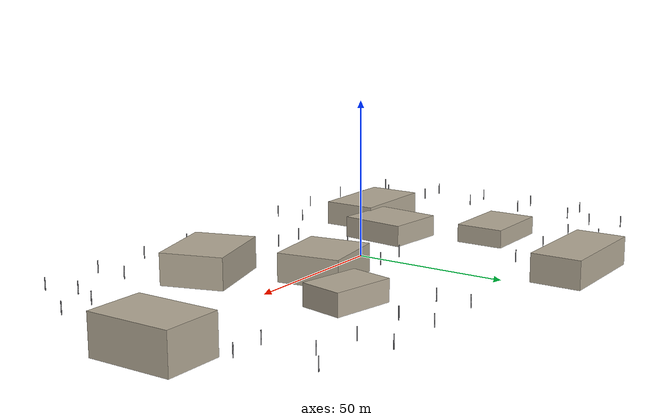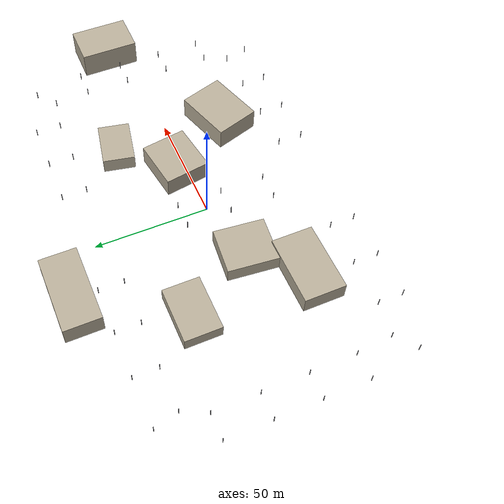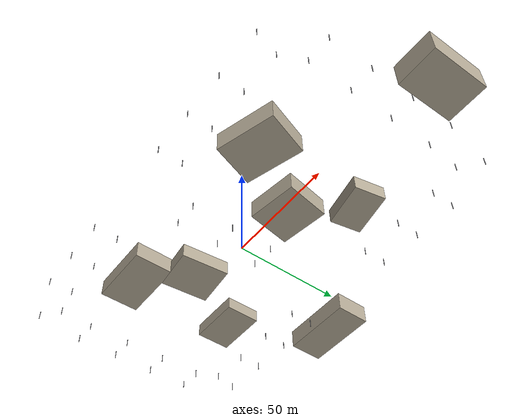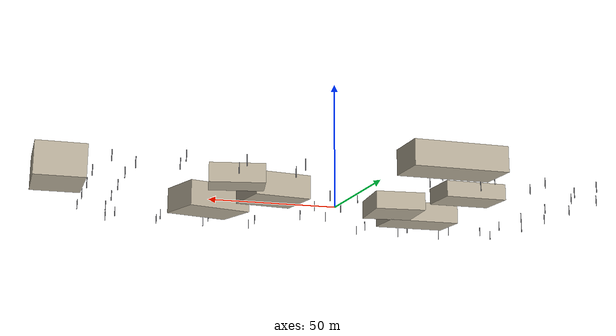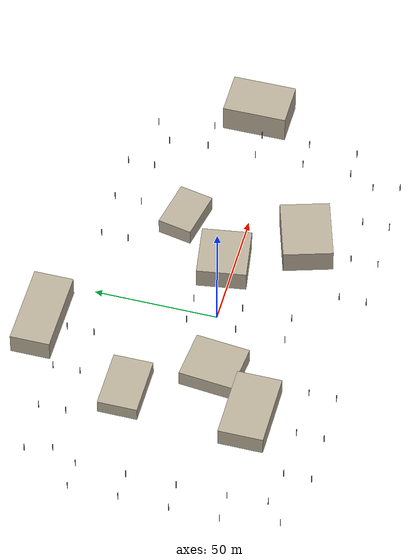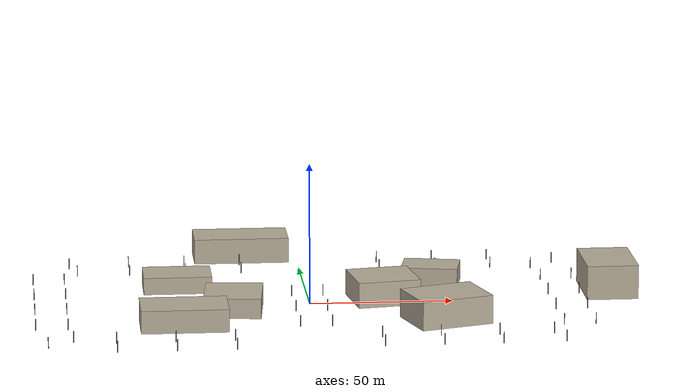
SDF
<?xml version="1.0" ?>
<sdf version="1.9">
  <model name="campus_structures">
    <static>true</static>
    <link name="link">
      <visual name="pole_loop_east_0l_visual">
        <pose>21.000000 -44.500000 2.000000 0 0 0</pose>
        <geometry><cylinder><radius>0.150000</radius><length>4.000000</length></cylinder></geometry>
        <material><ambient>0.45 0.45 0.47 1</ambient><diffuse>0.55 0.55 0.57 1</diffuse></material>
      </visual>
      <collision name="pole_loop_east_0l_collision">
        <pose>21.000000 -44.500000 2.000000 0 0 0</pose>
        <geometry><cylinder><radius>0.150000</radius><length>4.000000</length></cylinder></geometry>
      </collision>
      <visual name="pole_loop_east_0r_visual">
        <pose>21.000000 -55.500000 2.000000 0 0 0</pose>
        <geometry><cylinder><radius>0.150000</radius><length>4.000000</length></cylinder></geometry>
        <material><ambient>0.45 0.45 0.47 1</ambient><diffuse>0.55 0.55 0.57 1</diffuse></material>
      </visual>
      <collision name="pole_loop_east_0r_collision">
        <pose>21.000000 -55.500000 2.000000 0 0 0</pose>
        <geometry><cylinder><radius>0.150000</radius><length>4.000000</length></cylinder></geometry>
      </collision>
      <visual name="pole_loop_east_1l_visual">
        <pose>41.000000 -44.500000 2.000000 0 0 0</pose>
        <geometry><cylinder><radius>0.150000</radius><length>4.000000</length></cylinder></geometry>
        <material><ambient>0.45 0.45 0.47 1</ambient><diffuse>0.55 0.55 0.57 1</diffuse></material>
      </visual>
      <collision name="pole_loop_east_1l_collision">
        <pose>41.000000 -44.500000 2.000000 0 0 0</pose>
        <geometry><cylinder><radius>0.150000</radius><length>4.000000</length></cylinder></geometry>
      </collision>
      <visual name="pole_loop_east_1r_visual">
        <pose>41.000000 -55.500000 2.000000 0 0 0</pose>
        <geometry><cylinder><radius>0.150000</radius><length>4.000000</length></cylinder></geometry>
        <material><ambient>0.45 0.45 0.47 1</ambient><diffuse>0.55 0.55 0.57 1</diffuse></material>
      </visual>
      <collision name="pole_loop_east_1r_collision">
        <pose>41.000000 -55.500000 2.000000 0 0 0</pose>
        <geometry><cylinder><radius>0.150000</radius><length>4.000000</length></cylinder></geometry>
      </collision>
      <visual name="pole_loop_east_2l_visual">
        <pose>61.000000 -44.500000 2.000000 0 0 0</pose>
        <geometry><cylinder><radius>0.150000</radius><length>4.000000</length></cylinder></geometry>
        <material><ambient>0.45 0.45 0.47 1</ambient><diffuse>0.55 0.55 0.57 1</diffuse></material>
      </visual>
      <collision name="pole_loop_east_2l_collision">
        <pose>61.000000 -44.500000 2.000000 0 0 0</pose>
        <geometry><cylinder><radius>0.150000</radius><length>4.000000</length></cylinder></geometry>
      </collision>
      <visual name="pole_loop_east_2r_visual">
        <pose>61.000000 -55.500000 2.000000 0 0 0</pose>
        <geometry><cylinder><radius>0.150000</radius><length>4.000000</length></cylinder></geometry>
        <material><ambient>0.45 0.45 0.47 1</ambient><diffuse>0.55 0.55 0.57 1</diffuse></material>
      </visual>
      <collision name="pole_loop_east_2r_collision">
        <pose>61.000000 -55.500000 2.000000 0 0 0</pose>
        <geometry><cylinder><radius>0.150000</radius><length>4.000000</length></cylinder></geometry>
      </collision>
      <visual name="pole_loop_east_3l_visual">
        <pose>79.608126 -44.297931 2.000000 0 0 0</pose>
        <geometry><cylinder><radius>0.150000</radius><length>4.000000</length></cylinder></geometry>
        <material><ambient>0.45 0.45 0.47 1</ambient><diffuse>0.55 0.55 0.57 1</diffuse></material>
      </visual>
      <collision name="pole_loop_east_3l_collision">
        <pose>79.608126 -44.297931 2.000000 0 0 0</pose>
        <geometry><cylinder><radius>0.150000</radius><length>4.000000</length></cylinder></geometry>
      </collision>
      <visual name="pole_loop_east_3r_visual">
        <pose>82.329569 -54.955967 2.000000 0 0 0</pose>
        <geometry><cylinder><radius>0.150000</radius><length>4.000000</length></cylinder></geometry>
        <material><ambient>0.45 0.45 0.47 1</ambient><diffuse>0.55 0.55 0.57 1</diffuse></material>
      </visual>
      <collision name="pole_loop_east_3r_collision">
        <pose>82.329569 -54.955967 2.000000 0 0 0</pose>
        <geometry><cylinder><radius>0.150000</radius><length>4.000000</length></cylinder></geometry>
      </collision>
      <visual name="pole_loop_east_4l_visual">
        <pose>84.500000 -33.849556 2.000000 0 0 0</pose>
        <geometry><cylinder><radius>0.150000</radius><length>4.000000</length></cylinder></geometry>
        <material><ambient>0.45 0.45 0.47 1</ambient><diffuse>0.55 0.55 0.57 1</diffuse></material>
      </visual>
      <collision name="pole_loop_east_4l_collision">
        <pose>84.500000 -33.849556 2.000000 0 0 0</pose>
        <geometry><cylinder><radius>0.150000</radius><length>4.000000</length></cylinder></geometry>
      </collision>
      <visual name="pole_loop_east_4r_visual">
        <pose>95.500000 -33.849556 2.000000 0 0 0</pose>
        <geometry><cylinder><radius>0.150000</radius><length>4.000000</length></cylinder></geometry>
        <material><ambient>0.45 0.45 0.47 1</ambient><diffuse>0.55 0.55 0.57 1</diffuse></material>
      </visual>
      <collision name="pole_loop_east_4r_collision">
        <pose>95.500000 -33.849556 2.000000 0 0 0</pose>
        <geometry><cylinder><radius>0.150000</radius><length>4.000000</length></cylinder></geometry>
      </collision>
      <visual name="pole_loop_east_5l_visual">
        <pose>84.500000 -13.849556 2.000000 0 0 0</pose>
        <geometry><cylinder><radius>0.150000</radius><length>4.000000</length></cylinder></geometry>
        <material><ambient>0.45 0.45 0.47 1</ambient><diffuse>0.55 0.55 0.57 1</diffuse></material>
      </visual>
      <collision name="pole_loop_east_5l_collision">
        <pose>84.500000 -13.849556 2.000000 0 0 0</pose>
        <geometry><cylinder><radius>0.150000</radius><length>4.000000</length></cylinder></geometry>
      </collision>
      <visual name="pole_loop_east_5r_visual">
        <pose>95.500000 -13.849556 2.000000 0 0 0</pose>
        <geometry><cylinder><radius>0.150000</radius><length>4.000000</length></cylinder></geometry>
        <material><ambient>0.45 0.45 0.47 1</ambient><diffuse>0.55 0.55 0.57 1</diffuse></material>
      </visual>
      <collision name="pole_loop_east_5r_collision">
        <pose>95.500000 -13.849556 2.000000 0 0 0</pose>
        <geometry><cylinder><radius>0.150000</radius><length>4.000000</length></cylinder></geometry>
      </collision>
      <visual name="pole_loop_east_6l_visual">
        <pose>84.500000 6.150444 2.000000 0 0 0</pose>
        <geometry><cylinder><radius>0.150000</radius><length>4.000000</length></cylinder></geometry>
        <material><ambient>0.45 0.45 0.47 1</ambient><diffuse>0.55 0.55 0.57 1</diffuse></material>
      </visual>
      <collision name="pole_loop_east_6l_collision">
        <pose>84.500000 6.150444 2.000000 0 0 0</pose>
        <geometry><cylinder><radius>0.150000</radius><length>4.000000</length></cylinder></geometry>
      </collision>
      <visual name="pole_loop_east_6r_visual">
        <pose>95.500000 6.150444 2.000000 0 0 0</pose>
        <geometry><cylinder><radius>0.150000</radius><length>4.000000</length></cylinder></geometry>
        <material><ambient>0.45 0.45 0.47 1</ambient><diffuse>0.55 0.55 0.57 1</diffuse></material>
      </visual>
      <collision name="pole_loop_east_6r_collision">
        <pose>95.500000 6.150444 2.000000 0 0 0</pose>
        <geometry><cylinder><radius>0.150000</radius><length>4.000000</length></cylinder></geometry>
      </collision>
      <visual name="pole_loop_east_7l_visual">
        <pose>84.500000 26.150444 2.000000 0 0 0</pose>
        <geometry><cylinder><radius>0.150000</radius><length>4.000000</length></cylinder></geometry>
        <material><ambient>0.45 0.45 0.47 1</ambient><diffuse>0.55 0.55 0.57 1</diffuse></material>
      </visual>
      <collision name="pole_loop_east_7l_collision">
        <pose>84.500000 26.150444 2.000000 0 0 0</pose>
        <geometry><cylinder><radius>0.150000</radius><length>4.000000</length></cylinder></geometry>
      </collision>
      <visual name="pole_loop_east_7r_visual">
        <pose>95.500000 26.150444 2.000000 0 0 0</pose>
        <geometry><cylinder><radius>0.150000</radius><length>4.000000</length></cylinder></geometry>
        <material><ambient>0.45 0.45 0.47 1</ambient><diffuse>0.55 0.55 0.57 1</diffuse></material>
      </visual>
      <collision name="pole_loop_east_7r_collision">
        <pose>95.500000 26.150444 2.000000 0 0 0</pose>
        <geometry><cylinder><radius>0.150000</radius><length>4.000000</length></cylinder></geometry>
      </collision>
      <visual name="pole_loop_east_8l_visual">
        <pose>83.057476 42.083129 2.000000 0 0 0</pose>
        <geometry><cylinder><radius>0.150000</radius><length>4.000000</length></cylinder></geometry>
        <material><ambient>0.45 0.45 0.47 1</ambient><diffuse>0.55 0.55 0.57 1</diffuse></material>
      </visual>
      <collision name="pole_loop_east_8l_collision">
        <pose>83.057476 42.083129 2.000000 0 0 0</pose>
        <geometry><cylinder><radius>0.150000</radius><length>4.000000</length></cylinder></geometry>
      </collision>
      <visual name="pole_loop_east_8r_visual">
        <pose>91.616281 48.993038 2.000000 0 0 0</pose>
        <geometry><cylinder><radius>0.150000</radius><length>4.000000</length></cylinder></geometry>
        <material><ambient>0.45 0.45 0.47 1</ambient><diffuse>0.55 0.55 0.57 1</diffuse></material>
      </visual>
      <collision name="pole_loop_east_8r_collision">
        <pose>91.616281 48.993038 2.000000 0 0 0</pose>
        <geometry><cylinder><radius>0.150000</radius><length>4.000000</length></cylinder></geometry>
      </collision>
      <visual name="pole_loop_east_9l_visual">
        <pose>68.699112 44.500000 2.000000 0 0 0</pose>
        <geometry><cylinder><radius>0.150000</radius><length>4.000000</length></cylinder></geometry>
        <material><ambient>0.45 0.45 0.47 1</ambient><diffuse>0.55 0.55 0.57 1</diffuse></material>
      </visual>
      <collision name="pole_loop_east_9l_collision">
        <pose>68.699112 44.500000 2.000000 0 0 0</pose>
        <geometry><cylinder><radius>0.150000</radius><length>4.000000</length></cylinder></geometry>
      </collision>
      <visual name="pole_loop_east_9r_visual">
        <pose>68.699112 55.500000 2.000000 0 0 0</pose>
        <geometry><cylinder><radius>0.150000</radius><length>4.000000</length></cylinder></geometry>
        <material><ambient>0.45 0.45 0.47 1</ambient><diffuse>0.55 0.55 0.57 1</diffuse></material>
      </visual>
      <collision name="pole_loop_east_9r_collision">
        <pose>68.699112 55.500000 2.000000 0 0 0</pose>
        <geometry><cylinder><radius>0.150000</radius><length>4.000000</length></cylinder></geometry>
      </collision>
      <visual name="pole_loop_east_10l_visual">
        <pose>48.699112 44.500000 2.000000 0 0 0</pose>
        <geometry><cylinder><radius>0.150000</radius><length>4.000000</length></cylinder></geometry>
        <material><ambient>0.45 0.45 0.47 1</ambient><diffuse>0.55 0.55 0.57 1</diffuse></material>
      </visual>
      <collision name="pole_loop_east_10l_collision">
        <pose>48.699112 44.500000 2.000000 0 0 0</pose>
        <geometry><cylinder><radius>0.150000</radius><length>4.000000</length></cylinder></geometry>
      </collision>
      <visual name="pole_loop_east_10r_visual">
        <pose>48.699112 55.500000 2.000000 0 0 0</pose>
        <geometry><cylinder><radius>0.150000</radius><length>4.000000</length></cylinder></geometry>
        <material><ambient>0.45 0.45 0.47 1</ambient><diffuse>0.55 0.55 0.57 1</diffuse></material>
      </visual>
      <collision name="pole_loop_east_10r_collision">
        <pose>48.699112 55.500000 2.000000 0 0 0</pose>
        <geometry><cylinder><radius>0.150000</radius><length>4.000000</length></cylinder></geometry>
      </collision>
      <visual name="pole_loop_east_11l_visual">
        <pose>28.699112 44.500000 2.000000 0 0 0</pose>
        <geometry><cylinder><radius>0.150000</radius><length>4.000000</length></cylinder></geometry>
        <material><ambient>0.45 0.45 0.47 1</ambient><diffuse>0.55 0.55 0.57 1</diffuse></material>
      </visual>
      <collision name="pole_loop_east_11l_collision">
        <pose>28.699112 44.500000 2.000000 0 0 0</pose>
        <geometry><cylinder><radius>0.150000</radius><length>4.000000</length></cylinder></geometry>
      </collision>
      <visual name="pole_loop_east_11r_visual">
        <pose>28.699112 55.500000 2.000000 0 0 0</pose>
        <geometry><cylinder><radius>0.150000</radius><length>4.000000</length></cylinder></geometry>
        <material><ambient>0.45 0.45 0.47 1</ambient><diffuse>0.55 0.55 0.57 1</diffuse></material>
      </visual>
      <collision name="pole_loop_east_11r_collision">
        <pose>28.699112 55.500000 2.000000 0 0 0</pose>
        <geometry><cylinder><radius>0.150000</radius><length>4.000000</length></cylinder></geometry>
      </collision>
      <visual name="pole_loop_west_0l_visual">
        <pose>-21.000000 44.500000 2.000000 0 0 0</pose>
        <geometry><cylinder><radius>0.150000</radius><length>4.000000</length></cylinder></geometry>
        <material><ambient>0.45 0.45 0.47 1</ambient><diffuse>0.55 0.55 0.57 1</diffuse></material>
      </visual>
      <collision name="pole_loop_west_0l_collision">
        <pose>-21.000000 44.500000 2.000000 0 0 0</pose>
        <geometry><cylinder><radius>0.150000</radius><length>4.000000</length></cylinder></geometry>
      </collision>
      <visual name="pole_loop_west_0r_visual">
        <pose>-21.000000 55.500000 2.000000 0 0 0</pose>
        <geometry><cylinder><radius>0.150000</radius><length>4.000000</length></cylinder></geometry>
        <material><ambient>0.45 0.45 0.47 1</ambient><diffuse>0.55 0.55 0.57 1</diffuse></material>
      </visual>
      <collision name="pole_loop_west_0r_collision">
        <pose>-21.000000 55.500000 2.000000 0 0 0</pose>
        <geometry><cylinder><radius>0.150000</radius><length>4.000000</length></cylinder></geometry>
      </collision>
      <visual name="pole_loop_west_1l_visual">
        <pose>-41.000000 44.500000 2.000000 0 0 0</pose>
        <geometry><cylinder><radius>0.150000</radius><length>4.000000</length></cylinder></geometry>
        <material><ambient>0.45 0.45 0.47 1</ambient><diffuse>0.55 0.55 0.57 1</diffuse></material>
      </visual>
      <collision name="pole_loop_west_1l_collision">
        <pose>-41.000000 44.500000 2.000000 0 0 0</pose>
        <geometry><cylinder><radius>0.150000</radius><length>4.000000</length></cylinder></geometry>
      </collision>
      <visual name="pole_loop_west_1r_visual">
        <pose>-41.000000 55.500000 2.000000 0 0 0</pose>
        <geometry><cylinder><radius>0.150000</radius><length>4.000000</length></cylinder></geometry>
        <material><ambient>0.45 0.45 0.47 1</ambient><diffuse>0.55 0.55 0.57 1</diffuse></material>
      </visual>
      <collision name="pole_loop_west_1r_collision">
        <pose>-41.000000 55.500000 2.000000 0 0 0</pose>
        <geometry><cylinder><radius>0.150000</radius><length>4.000000</length></cylinder></geometry>
      </collision>
      <visual name="pole_loop_west_2l_visual">
        <pose>-61.000000 44.500000 2.000000 0 0 0</pose>
        <geometry><cylinder><radius>0.150000</radius><length>4.000000</length></cylinder></geometry>
        <material><ambient>0.45 0.45 0.47 1</ambient><diffuse>0.55 0.55 0.57 1</diffuse></material>
      </visual>
      <collision name="pole_loop_west_2l_collision">
        <pose>-61.000000 44.500000 2.000000 0 0 0</pose>
        <geometry><cylinder><radius>0.150000</radius><length>4.000000</length></cylinder></geometry>
      </collision>
      <visual name="pole_loop_west_2r_visual">
        <pose>-61.000000 55.500000 2.000000 0 0 0</pose>
        <geometry><cylinder><radius>0.150000</radius><length>4.000000</length></cylinder></geometry>
        <material><ambient>0.45 0.45 0.47 1</ambient><diffuse>0.55 0.55 0.57 1</diffuse></material>
      </visual>
      <collision name="pole_loop_west_2r_collision">
        <pose>-61.000000 55.500000 2.000000 0 0 0</pose>
        <geometry><cylinder><radius>0.150000</radius><length>4.000000</length></cylinder></geometry>
      </collision>
      <visual name="pole_loop_west_3l_visual">
        <pose>-79.608126 44.297931 2.000000 0 0 0</pose>
        <geometry><cylinder><radius>0.150000</radius><length>4.000000</length></cylinder></geometry>
        <material><ambient>0.45 0.45 0.47 1</ambient><diffuse>0.55 0.55 0.57 1</diffuse></material>
      </visual>
      <collision name="pole_loop_west_3l_collision">
        <pose>-79.608126 44.297931 2.000000 0 0 0</pose>
        <geometry><cylinder><radius>0.150000</radius><length>4.000000</length></cylinder></geometry>
      </collision>
      <visual name="pole_loop_west_3r_visual">
        <pose>-82.329569 54.955967 2.000000 0 0 0</pose>
        <geometry><cylinder><radius>0.150000</radius><length>4.000000</length></cylinder></geometry>
        <material><ambient>0.45 0.45 0.47 1</ambient><diffuse>0.55 0.55 0.57 1</diffuse></material>
      </visual>
      <collision name="pole_loop_west_3r_collision">
        <pose>-82.329569 54.955967 2.000000 0 0 0</pose>
        <geometry><cylinder><radius>0.150000</radius><length>4.000000</length></cylinder></geometry>
      </collision>
      <visual name="pole_loop_west_4l_visual">
        <pose>-84.500000 33.849556 2.000000 0 0 0</pose>
        <geometry><cylinder><radius>0.150000</radius><length>4.000000</length></cylinder></geometry>
        <material><ambient>0.45 0.45 0.47 1</ambient><diffuse>0.55 0.55 0.57 1</diffuse></material>
      </visual>
      <collision name="pole_loop_west_4l_collision">
        <pose>-84.500000 33.849556 2.000000 0 0 0</pose>
        <geometry><cylinder><radius>0.150000</radius><length>4.000000</length></cylinder></geometry>
      </collision>
      <visual name="pole_loop_west_4r_visual">
        <pose>-95.500000 33.849556 2.000000 0 0 0</pose>
        <geometry><cylinder><radius>0.150000</radius><length>4.000000</length></cylinder></geometry>
        <material><ambient>0.45 0.45 0.47 1</ambient><diffuse>0.55 0.55 0.57 1</diffuse></material>
      </visual>
      <collision name="pole_loop_west_4r_collision">
        <pose>-95.500000 33.849556 2.000000 0 0 0</pose>
        <geometry><cylinder><radius>0.150000</radius><length>4.000000</length></cylinder></geometry>
      </collision>
      <visual name="pole_loop_west_5l_visual">
        <pose>-84.500000 13.849556 2.000000 0 0 0</pose>
        <geometry><cylinder><radius>0.150000</radius><length>4.000000</length></cylinder></geometry>
        <material><ambient>0.45 0.45 0.47 1</ambient><diffuse>0.55 0.55 0.57 1</diffuse></material>
      </visual>
      <collision name="pole_loop_west_5l_collision">
        <pose>-84.500000 13.849556 2.000000 0 0 0</pose>
        <geometry><cylinder><radius>0.150000</radius><length>4.000000</length></cylinder></geometry>
      </collision>
      <visual name="pole_loop_west_5r_visual">
        <pose>-95.500000 13.849556 2.000000 0 0 0</pose>
        <geometry><cylinder><radius>0.150000</radius><length>4.000000</length></cylinder></geometry>
        <material><ambient>0.45 0.45 0.47 1</ambient><diffuse>0.55 0.55 0.57 1</diffuse></material>
      </visual>
      <collision name="pole_loop_west_5r_collision">
        <pose>-95.500000 13.849556 2.000000 0 0 0</pose>
        <geometry><cylinder><radius>0.150000</radius><length>4.000000</length></cylinder></geometry>
      </collision>
      <visual name="pole_loop_west_6l_visual">
        <pose>-84.500000 -6.150444 2.000000 0 0 0</pose>
        <geometry><cylinder><radius>0.150000</radius><length>4.000000</length></cylinder></geometry>
        <material><ambient>0.45 0.45 0.47 1</ambient><diffuse>0.55 0.55 0.57 1</diffuse></material>
      </visual>
      <collision name="pole_loop_west_6l_collision">
        <pose>-84.500000 -6.150444 2.000000 0 0 0</pose>
        <geometry><cylinder><radius>0.150000</radius><length>4.000000</length></cylinder></geometry>
      </collision>
      <visual name="pole_loop_west_6r_visual">
        <pose>-95.500000 -6.150444 2.000000 0 0 0</pose>
        <geometry><cylinder><radius>0.150000</radius><length>4.000000</length></cylinder></geometry>
        <material><ambient>0.45 0.45 0.47 1</ambient><diffuse>0.55 0.55 0.57 1</diffuse></material>
      </visual>
      <collision name="pole_loop_west_6r_collision">
        <pose>-95.500000 -6.150444 2.000000 0 0 0</pose>
        <geometry><cylinder><radius>0.150000</radius><length>4.000000</length></cylinder></geometry>
      </collision>
      <visual name="pole_loop_west_7l_visual">
        <pose>-84.500000 -26.150444 2.000000 0 0 0</pose>
        <geometry><cylinder><radius>0.150000</radius><length>4.000000</length></cylinder></geometry>
        <material><ambient>0.45 0.45 0.47 1</ambient><diffuse>0.55 0.55 0.57 1</diffuse></material>
      </visual>
      <collision name="pole_loop_west_7l_collision">
        <pose>-84.500000 -26.150444 2.000000 0 0 0</pose>
        <geometry><cylinder><radius>0.150000</radius><length>4.000000</length></cylinder></geometry>
      </collision>
      <visual name="pole_loop_west_7r_visual">
        <pose>-95.500000 -26.150444 2.000000 0 0 0</pose>
        <geometry><cylinder><radius>0.150000</radius><length>4.000000</length></cylinder></geometry>
        <material><ambient>0.45 0.45 0.47 1</ambient><diffuse>0.55 0.55 0.57 1</diffuse></material>
      </visual>
      <collision name="pole_loop_west_7r_collision">
        <pose>-95.500000 -26.150444 2.000000 0 0 0</pose>
        <geometry><cylinder><radius>0.150000</radius><length>4.000000</length></cylinder></geometry>
      </collision>
      <visual name="pole_loop_west_8l_visual">
        <pose>-83.057476 -42.083129 2.000000 0 0 0</pose>
        <geometry><cylinder><radius>0.150000</radius><length>4.000000</length></cylinder></geometry>
        <material><ambient>0.45 0.45 0.47 1</ambient><diffuse>0.55 0.55 0.57 1</diffuse></material>
      </visual>
      <collision name="pole_loop_west_8l_collision">
        <pose>-83.057476 -42.083129 2.000000 0 0 0</pose>
        <geometry><cylinder><radius>0.150000</radius><length>4.000000</length></cylinder></geometry>
      </collision>
      <visual name="pole_loop_west_8r_visual">
        <pose>-91.616281 -48.993038 2.000000 0 0 0</pose>
        <geometry><cylinder><radius>0.150000</radius><length>4.000000</length></cylinder></geometry>
        <material><ambient>0.45 0.45 0.47 1</ambient><diffuse>0.55 0.55 0.57 1</diffuse></material>
      </visual>
      <collision name="pole_loop_west_8r_collision">
        <pose>-91.616281 -48.993038 2.000000 0 0 0</pose>
        <geometry><cylinder><radius>0.150000</radius><length>4.000000</length></cylinder></geometry>
      </collision>
      <visual name="pole_loop_west_9l_visual">
        <pose>-68.699112 -44.500000 2.000000 0 0 0</pose>
        <geometry><cylinder><radius>0.150000</radius><length>4.000000</length></cylinder></geometry>
        <material><ambient>0.45 0.45 0.47 1</ambient><diffuse>0.55 0.55 0.57 1</diffuse></material>
      </visual>
      <collision name="pole_loop_west_9l_collision">
        <pose>-68.699112 -44.500000 2.000000 0 0 0</pose>
        <geometry><cylinder><radius>0.150000</radius><length>4.000000</length></cylinder></geometry>
      </collision>
      <visual name="pole_loop_west_9r_visual">
        <pose>-68.699112 -55.500000 2.000000 0 0 0</pose>
        <geometry><cylinder><radius>0.150000</radius><length>4.000000</length></cylinder></geometry>
        <material><ambient>0.45 0.45 0.47 1</ambient><diffuse>0.55 0.55 0.57 1</diffuse></material>
      </visual>
      <collision name="pole_loop_west_9r_collision">
        <pose>-68.699112 -55.500000 2.000000 0 0 0</pose>
        <geometry><cylinder><radius>0.150000</radius><length>4.000000</length></cylinder></geometry>
      </collision>
      <visual name="pole_loop_west_10l_visual">
        <pose>-48.699112 -44.500000 2.000000 0 0 0</pose>
        <geometry><cylinder><radius>0.150000</radius><length>4.000000</length></cylinder></geometry>
        <material><ambient>0.45 0.45 0.47 1</ambient><diffuse>0.55 0.55 0.57 1</diffuse></material>
      </visual>
      <collision name="pole_loop_west_10l_collision">
        <pose>-48.699112 -44.500000 2.000000 0 0 0</pose>
        <geometry><cylinder><radius>0.150000</radius><length>4.000000</length></cylinder></geometry>
      </collision>
      <visual name="pole_loop_west_10r_visual">
        <pose>-48.699112 -55.500000 2.000000 0 0 0</pose>
        <geometry><cylinder><radius>0.150000</radius><length>4.000000</length></cylinder></geometry>
        <material><ambient>0.45 0.45 0.47 1</ambient><diffuse>0.55 0.55 0.57 1</diffuse></material>
      </visual>
      <collision name="pole_loop_west_10r_collision">
        <pose>-48.699112 -55.500000 2.000000 0 0 0</pose>
        <geometry><cylinder><radius>0.150000</radius><length>4.000000</length></cylinder></geometry>
      </collision>
      <visual name="pole_loop_west_11l_visual">
        <pose>-28.699112 -44.500000 2.000000 0 0 0</pose>
        <geometry><cylinder><radius>0.150000</radius><length>4.000000</length></cylinder></geometry>
        <material><ambient>0.45 0.45 0.47 1</ambient><diffuse>0.55 0.55 0.57 1</diffuse></material>
      </visual>
      <collision name="pole_loop_west_11l_collision">
        <pose>-28.699112 -44.500000 2.000000 0 0 0</pose>
        <geometry><cylinder><radius>0.150000</radius><length>4.000000</length></cylinder></geometry>
      </collision>
      <visual name="pole_loop_west_11r_visual">
        <pose>-28.699112 -55.500000 2.000000 0 0 0</pose>
        <geometry><cylinder><radius>0.150000</radius><length>4.000000</length></cylinder></geometry>
        <material><ambient>0.45 0.45 0.47 1</ambient><diffuse>0.55 0.55 0.57 1</diffuse></material>
      </visual>
      <collision name="pole_loop_west_11r_collision">
        <pose>-28.699112 -55.500000 2.000000 0 0 0</pose>
        <geometry><cylinder><radius>0.150000</radius><length>4.000000</length></cylinder></geometry>
      </collision>
      <visual name="pole_cross_0l_visual">
        <pose>-5.500000 -29.000000 2.000000 0 0 0</pose>
        <geometry><cylinder><radius>0.150000</radius><length>4.000000</length></cylinder></geometry>
        <material><ambient>0.45 0.45 0.47 1</ambient><diffuse>0.55 0.55 0.57 1</diffuse></material>
      </visual>
      <collision name="pole_cross_0l_collision">
        <pose>-5.500000 -29.000000 2.000000 0 0 0</pose>
        <geometry><cylinder><radius>0.150000</radius><length>4.000000</length></cylinder></geometry>
      </collision>
      <visual name="pole_cross_0r_visual">
        <pose>5.500000 -29.000000 2.000000 0 0 0</pose>
        <geometry><cylinder><radius>0.150000</radius><length>4.000000</length></cylinder></geometry>
        <material><ambient>0.45 0.45 0.47 1</ambient><diffuse>0.55 0.55 0.57 1</diffuse></material>
      </visual>
      <collision name="pole_cross_0r_collision">
        <pose>5.500000 -29.000000 2.000000 0 0 0</pose>
        <geometry><cylinder><radius>0.150000</radius><length>4.000000</length></cylinder></geometry>
      </collision>
      <visual name="pole_cross_1l_visual">
        <pose>-5.500000 -9.000000 2.000000 0 0 0</pose>
        <geometry><cylinder><radius>0.150000</radius><length>4.000000</length></cylinder></geometry>
        <material><ambient>0.45 0.45 0.47 1</ambient><diffuse>0.55 0.55 0.57 1</diffuse></material>
      </visual>
      <collision name="pole_cross_1l_collision">
        <pose>-5.500000 -9.000000 2.000000 0 0 0</pose>
        <geometry><cylinder><radius>0.150000</radius><length>4.000000</length></cylinder></geometry>
      </collision>
      <visual name="pole_cross_1r_visual">
        <pose>5.500000 -9.000000 2.000000 0 0 0</pose>
        <geometry><cylinder><radius>0.150000</radius><length>4.000000</length></cylinder></geometry>
        <material><ambient>0.45 0.45 0.47 1</ambient><diffuse>0.55 0.55 0.57 1</diffuse></material>
      </visual>
      <collision name="pole_cross_1r_collision">
        <pose>5.500000 -9.000000 2.000000 0 0 0</pose>
        <geometry><cylinder><radius>0.150000</radius><length>4.000000</length></cylinder></geometry>
      </collision>
      <visual name="pole_cross_2l_visual">
        <pose>-5.500000 11.000000 2.000000 0 0 0</pose>
        <geometry><cylinder><radius>0.150000</radius><length>4.000000</length></cylinder></geometry>
        <material><ambient>0.45 0.45 0.47 1</ambient><diffuse>0.55 0.55 0.57 1</diffuse></material>
      </visual>
      <collision name="pole_cross_2l_collision">
        <pose>-5.500000 11.000000 2.000000 0 0 0</pose>
        <geometry><cylinder><radius>0.150000</radius><length>4.000000</length></cylinder></geometry>
      </collision>
      <visual name="pole_cross_2r_visual">
        <pose>5.500000 11.000000 2.000000 0 0 0</pose>
        <geometry><cylinder><radius>0.150000</radius><length>4.000000</length></cylinder></geometry>
        <material><ambient>0.45 0.45 0.47 1</ambient><diffuse>0.55 0.55 0.57 1</diffuse></material>
      </visual>
      <collision name="pole_cross_2r_collision">
        <pose>5.500000 11.000000 2.000000 0 0 0</pose>
        <geometry><cylinder><radius>0.150000</radius><length>4.000000</length></cylinder></geometry>
      </collision>
      <visual name="b_sw_visual">
        <pose>-45.000000 -25.000000 4.000000 0 0 0.000000</pose>
        <geometry><box><size>30.000000 18.000000 8.000000</size></box></geometry>
        <material><ambient>0.60 0.56 0.50 1</ambient><diffuse>0.72 0.68 0.60 1</diffuse></material>
      </visual>
      <collision name="b_sw_collision">
        <pose>-45.000000 -25.000000 4.000000 0 0 0.000000</pose>
        <geometry><box><size>30.000000 18.000000 8.000000</size></box></geometry>
      </collision>
      <visual name="b_nw_visual">
        <pose>-45.000000 25.000000 3.000000 0 0 0.000000</pose>
        <geometry><box><size>24.000000 16.000000 6.000000</size></box></geometry>
        <material><ambient>0.60 0.56 0.50 1</ambient><diffuse>0.72 0.68 0.60 1</diffuse></material>
      </visual>
      <collision name="b_nw_collision">
        <pose>-45.000000 25.000000 3.000000 0 0 0.000000</pose>
        <geometry><box><size>24.000000 16.000000 6.000000</size></box></geometry>
      </collision>
      <visual name="b_se_visual">
        <pose>45.000000 -25.000000 5.000000 0 0 0.300000</pose>
        <geometry><box><size>26.000000 20.000000 10.000000</size></box></geometry>
        <material><ambient>0.60 0.56 0.50 1</ambient><diffuse>0.72 0.68 0.60 1</diffuse></material>
      </visual>
      <collision name="b_se_collision">
        <pose>45.000000 -25.000000 5.000000 0 0 0.300000</pose>
        <geometry><box><size>26.000000 20.000000 10.000000</size></box></geometry>
      </collision>
      <visual name="b_ne_visual">
        <pose>45.000000 25.000000 3.500000 0 0 -0.200000</pose>
        <geometry><box><size>20.000000 14.000000 7.000000</size></box></geometry>
        <material><ambient>0.60 0.56 0.50 1</ambient><diffuse>0.72 0.68 0.60 1</diffuse></material>
      </visual>
      <collision name="b_ne_collision">
        <pose>45.000000 25.000000 3.500000 0 0 -0.200000</pose>
        <geometry><box><size>20.000000 14.000000 7.000000</size></box></geometry>
      </collision>
      <visual name="b_north_visual">
        <pose>-20.000000 66.000000 4.500000 0 0 0.000000</pose>
        <geometry><box><size>34.000000 16.000000 9.000000</size></box></geometry>
        <material><ambient>0.60 0.56 0.50 1</ambient><diffuse>0.72 0.68 0.60 1</diffuse></material>
      </visual>
      <collision name="b_north_collision">
        <pose>-20.000000 66.000000 4.500000 0 0 0.000000</pose>
        <geometry><box><size>34.000000 16.000000 9.000000</size></box></geometry>
      </collision>
      <visual name="b_east_visual">
        <pose>106.000000 10.000000 6.000000 0 0 0.000000</pose>
        <geometry><box><size>18.000000 26.000000 12.000000</size></box></geometry>
        <material><ambient>0.60 0.56 0.50 1</ambient><diffuse>0.72 0.68 0.60 1</diffuse></material>
      </visual>
      <collision name="b_east_collision">
        <pose>106.000000 10.000000 6.000000 0 0 0.000000</pose>
        <geometry><box><size>18.000000 26.000000 12.000000</size></box></geometry>
      </collision>
      <visual name="b_mid_e_visual">
        <pose>26.000000 4.000000 4.500000 0 0 0.150000</pose>
        <geometry><box><size>22.000000 20.000000 9.000000</size></box></geometry>
        <material><ambient>0.60 0.56 0.50 1</ambient><diffuse>0.72 0.68 0.60 1</diffuse></material>
      </visual>
      <collision name="b_mid_e_collision">
        <pose>26.000000 4.000000 4.500000 0 0 0.150000</pose>
        <geometry><box><size>22.000000 20.000000 9.000000</size></box></geometry>
      </collision>
      <visual name="b_mid_w_visual">
        <pose>-27.000000 -6.000000 3.500000 0 0 -0.100000</pose>
        <geometry><box><size>20.000000 22.000000 7.000000</size></box></geometry>
        <material><ambient>0.60 0.56 0.50 1</ambient><diffuse>0.72 0.68 0.60 1</diffuse></material>
      </visual>
      <collision name="b_mid_w_collision">
        <pose>-27.000000 -6.000000 3.500000 0 0 -0.100000</pose>
        <geometry><box><size>20.000000 22.000000 7.000000</size></box></geometry>
      </collision>
    </link>
  </model>
</sdf>
